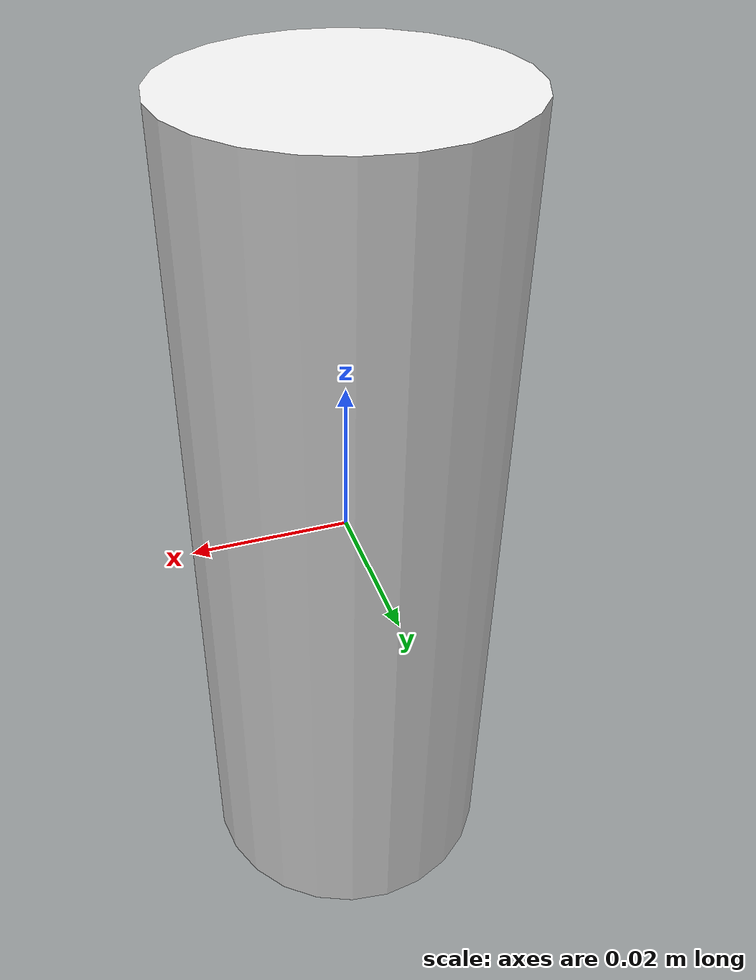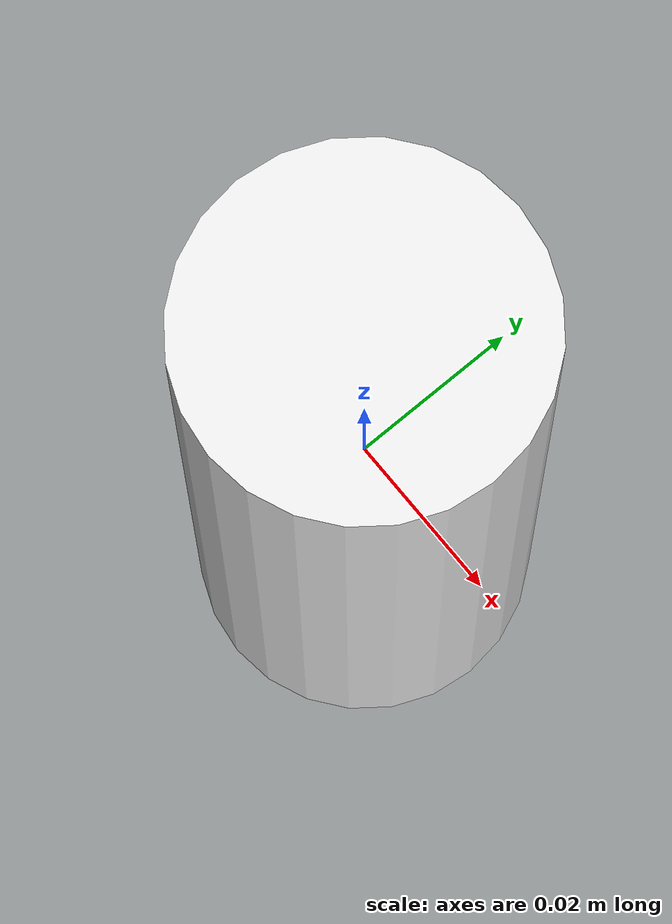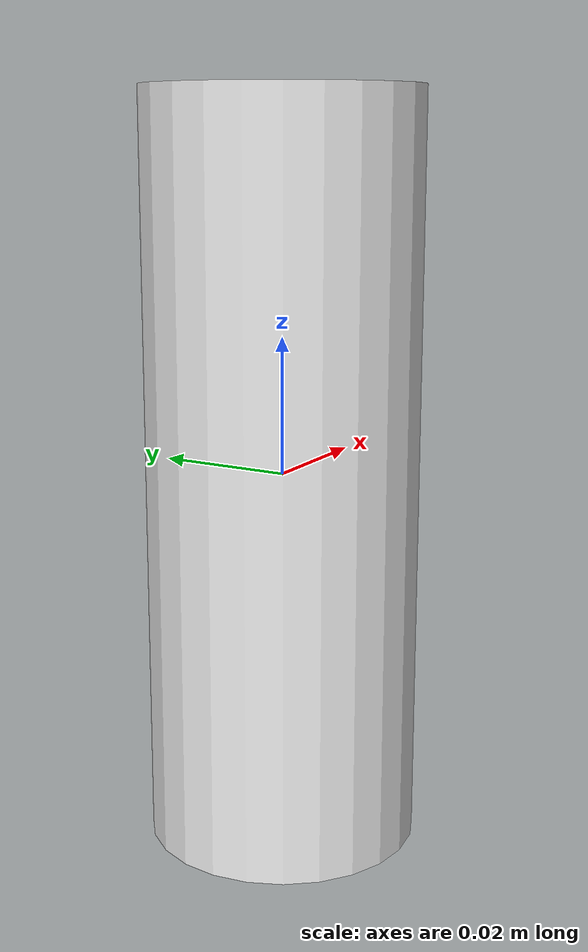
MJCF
<mujoco model="whiteclaw">
  <asset>
    <texture file="textures/tallcan/whiteclaw.png" name="tex-whiteclaw"/>
    <material name="whiteclaw" reflectance="0.7" texrepeat="5 5" texture="tex-whiteclaw" texuniform="true"/>
  </asset>
  <worldbody>
    <body>
      <body name="collision">
        <geom pos="0 0 0" size="0.02 0.055" type="cylinder" solimp="0.998 0.998 0.001" solref="0.001 1" density="100" friction="0.95 0.3 0.1" material="whiteclaw" group="1" condim="4"/>
      </body>

      <site rgba="1 0 0 0" size="0.005" pos="0 0 -0.08" name="bottom_site"/>
      <site rgba="0 1 0 0" size="0.005" pos="0 0 0.0" name="top_site"/>
      <site rgba="0 0 1 0" size="0.005" pos="0.06 0.06 0" name="horizontal_radius_site"/>
    </body>
  </worldbody>
</mujoco>
